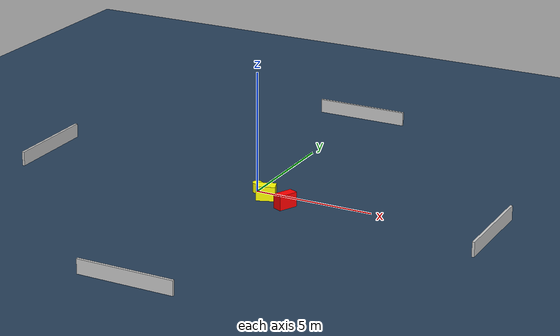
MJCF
<?xml version="1.0" ?>
<mujoco model="generated_environment">
  <option timestep="0.01" integrator="RK4" cone="elliptic"/>
  <default>
    <geom density="1"/>
  </default>
  <asset>
    <texture builtin="gradient" height="3072" name="skybox" rgb1="0.3 0.5 0.7" rgb2="0 0 0" type="skybox" width="512"/>
    <texture builtin="checker" height="300" name="groundplane" rgb1="0.2 0.3 0.4" rgb2="0.1 0.2 0.3" type="2d" width="300"/>
    <material name="groundplane" reflectance="0.2" texrepeat="5 5" texture="groundplane"/>
  </asset>
  <worldbody>
    <light dir="0 0 -1" directional="true" pos="0 0 1.5"/>
    <geom condim="3" friction="0.5 0.005 0.001" material="groundplane" name="floor" pos="0 0 0" size="0 0 0.05" type="plane"/>
    <body name="walls">
      <geom name="wall_1" condim="4" pos="-10.0 0.0 0.3" rgba="0.800000011920929 0.800000011920929 0.800000011920929 1.0" size="0.05 2.0 0.3" type="box"/>
      <geom name="wall_2" condim="4" pos="10.0 0.0 0.3" rgba="0.800000011920929 0.800000011920929 0.800000011920929 1.0" size="0.05 2.0 0.3" type="box"/>
      <geom name="wall_3" condim="4" pos="0.0 -10.0 0.3" rgba="0.800000011920929 0.800000011920929 0.800000011920929 1.0" size="2.0 0.05 0.3" type="box"/>
      <geom name="wall_4" condim="4" pos="0.0 10.0 0.3" rgba="0.800000011920929 0.800000011920929 0.800000011920929 1.0" size="2.0 0.05 0.3" type="box"/>
    </body>
    <body name="robot">
      <joint name="joint_x" type="slide" pos="0 0 0" axis="1 0 0"/>
      <joint name="joint_y" type="slide" pos="0 0 0" axis="0 1 0"/>
      <geom name="robot" type="cylinder" pos="0.0 0.0 0.2" size="0.2 0.2 0.0" mass="5.0" friction="1.0 0.005 0.0001" condim="4" rgba="1.0 1.0 0.0 1.0"/>
    </body>
    <body name="obstacle_1_movable">
      <geom name="obstacle_1_movable" condim="4" pos="0.6655082662581407 -0.531852561497702 0.3" euler="0 0 20.069448728296063" friction="0.0 0.005 0.001" rgba="1.0 1.0 0.0 1.0" size="0.3924935536083004 0.2462372297835042 0.3" type="box" mass="0.1"/>
      <joint type="free"/>
    </body>
    <body name="obstacle_2_static">
      <geom name="obstacle_2_static" condim="4" pos="1.7330494471977531 -0.9360503305575274 0.3" euler="0 0 154.86759169236217" friction="0.0 0.005 0.001" rgba="1.0 0.0 0.0 1.0" size="0.20074025870270984 0.4148981411335623 0.3" type="box"/>
    </body>
  </worldbody>
  <actuator>
    <motor name="actuator_x" joint="joint_x" gear="1" ctrlrange="-1 1"/>
    <motor name="actuator_y" joint="joint_y" gear="1" ctrlrange="-1 1"/>
  </actuator>
</mujoco>
